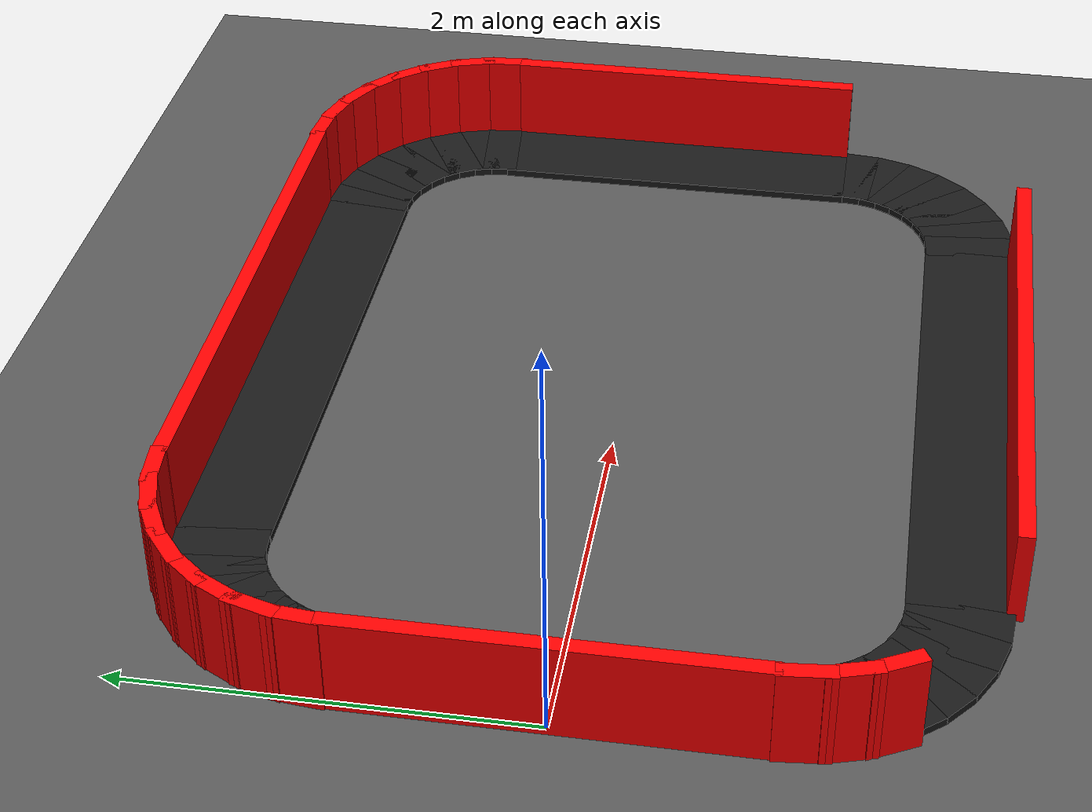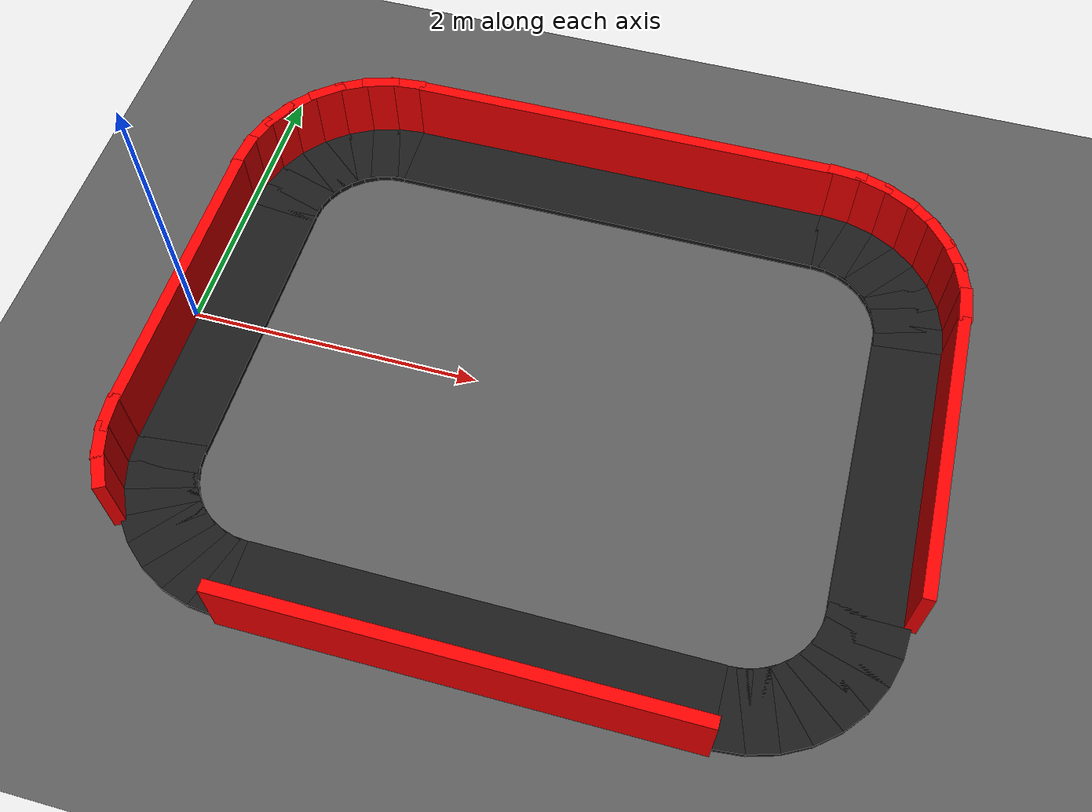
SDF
<sdf version="1.8">
 <world name="city_track_world">
  <model name="ground_plane">
   <static>true</static>
   <link name="link">
    <collision name="collision">
     <geometry><plane><normal>0 0 1</normal><size>100 100</size></plane></geometry>
    </collision>
    <visual name="visual">
     <geometry><plane><normal>0 0 1</normal><size>100 100</size></plane></geometry>
     <material><ambient>0.35 0.35 0.35 1</ambient><diffuse>0.35 0.35 0.35 1</diffuse></material>
    </visual>
   </link>
  </model>
  <model name="road_top">
   <static>true</static>
   <link name="link">
    <pose>2.5000 1.7500 0.0200 0 0 0.0000</pose>
    <visual name="visual">
     <geometry><box><size>3.0000 0.5000 0.0400</size></box></geometry>
     <material><ambient>0.10 0.10 0.10 1</ambient><diffuse>0.10 0.10 0.10 1</diffuse></material>
    </visual>
   </link>
  </model>
  <model name="road_bottom">
   <static>true</static>
   <link name="link">
    <pose>2.5000 -1.7500 0.0200 0 0 0.0000</pose>
    <visual name="visual">
     <geometry><box><size>3.0000 0.5000 0.0400</size></box></geometry>
     <material><ambient>0.10 0.10 0.10 1</ambient><diffuse>0.10 0.10 0.10 1</diffuse></material>
    </visual>
   </link>
  </model>
  <model name="road_left">
   <static>true</static>
   <link name="link">
    <pose>0.2500 0.0000 0.0200 0 0 1.5708</pose>
    <visual name="visual">
     <geometry><box><size>2.0000 0.5000 0.0400</size></box></geometry>
     <material><ambient>0.10 0.10 0.10 1</ambient><diffuse>0.10 0.10 0.10 1</diffuse></material>
    </visual>
   </link>
  </model>
  <model name="road_right">
   <static>true</static>
   <link name="link">
    <pose>4.7500 0.0000 0.0200 0 0 1.5708</pose>
    <visual name="visual">
     <geometry><box><size>2.0000 0.5000 0.0400</size></box></geometry>
     <material><ambient>0.10 0.10 0.10 1</ambient><diffuse>0.10 0.10 0.10 1</diffuse></material>
    </visual>
   </link>
  </model>
  <model name="road_top_right_curve_1">
   <static>true</static>
   <link name="link">
    <pose>4.7464 1.0735 0.0200 0 0 1.6690</pose>
    <visual name="visual">
     <geometry><box><size>0.1988 0.5000 0.0400</size></box></geometry>
     <material><ambient>0.10 0.10 0.10 1</ambient><diffuse>0.10 0.10 0.10 1</diffuse></material>
    </visual>
   </link>
  </model>
  <model name="road_top_right_curve_2">
   <static>true</static>
   <link name="link">
    <pose>4.7177 1.2177 0.0200 0 0 1.8653</pose>
    <visual name="visual">
     <geometry><box><size>0.1988 0.5000 0.0400</size></box></geometry>
     <material><ambient>0.10 0.10 0.10 1</ambient><diffuse>0.10 0.10 0.10 1</diffuse></material>
    </visual>
   </link>
  </model>
  <model name="road_top_right_curve_3">
   <static>true</static>
   <link name="link">
    <pose>4.6614 1.3535 0.0200 0 0 2.0617</pose>
    <visual name="visual">
     <geometry><box><size>0.1988 0.5000 0.0400</size></box></geometry>
     <material><ambient>0.10 0.10 0.10 1</ambient><diffuse>0.10 0.10 0.10 1</diffuse></material>
    </visual>
   </link>
  </model>
  <model name="road_top_right_curve_4">
   <static>true</static>
   <link name="link">
    <pose>4.5798 1.4758 0.0200 0 0 2.2580</pose>
    <visual name="visual">
     <geometry><box><size>0.1988 0.5000 0.0400</size></box></geometry>
     <material><ambient>0.10 0.10 0.10 1</ambient><diffuse>0.10 0.10 0.10 1</diffuse></material>
    </visual>
   </link>
  </model>
  <model name="road_top_right_curve_5">
   <static>true</static>
   <link name="link">
    <pose>4.4758 1.5798 0.0200 0 0 2.4544</pose>
    <visual name="visual">
     <geometry><box><size>0.1988 0.5000 0.0400</size></box></geometry>
     <material><ambient>0.10 0.10 0.10 1</ambient><diffuse>0.10 0.10 0.10 1</diffuse></material>
    </visual>
   </link>
  </model>
  <model name="road_top_right_curve_6">
   <static>true</static>
   <link name="link">
    <pose>4.3535 1.6614 0.0200 0 0 2.6507</pose>
    <visual name="visual">
     <geometry><box><size>0.1988 0.5000 0.0400</size></box></geometry>
     <material><ambient>0.10 0.10 0.10 1</ambient><diffuse>0.10 0.10 0.10 1</diffuse></material>
    </visual>
   </link>
  </model>
  <model name="road_top_right_curve_7">
   <static>true</static>
   <link name="link">
    <pose>4.2177 1.7177 0.0200 0 0 2.8471</pose>
    <visual name="visual">
     <geometry><box><size>0.1988 0.5000 0.0400</size></box></geometry>
     <material><ambient>0.10 0.10 0.10 1</ambient><diffuse>0.10 0.10 0.10 1</diffuse></material>
    </visual>
   </link>
  </model>
  <model name="road_top_right_curve_8">
   <static>true</static>
   <link name="link">
    <pose>4.0735 1.7464 0.0200 0 0 3.0434</pose>
    <visual name="visual">
     <geometry><box><size>0.1988 0.5000 0.0400</size></box></geometry>
     <material><ambient>0.10 0.10 0.10 1</ambient><diffuse>0.10 0.10 0.10 1</diffuse></material>
    </visual>
   </link>
  </model>
  <model name="road_top_left_curve_1">
   <static>true</static>
   <link name="link">
    <pose>0.9265 1.7464 0.0200 0 0 3.2398</pose>
    <visual name="visual">
     <geometry><box><size>0.1988 0.5000 0.0400</size></box></geometry>
     <material><ambient>0.10 0.10 0.10 1</ambient><diffuse>0.10 0.10 0.10 1</diffuse></material>
    </visual>
   </link>
  </model>
  <model name="road_top_left_curve_2">
   <static>true</static>
   <link name="link">
    <pose>0.7823 1.7177 0.0200 0 0 3.4361</pose>
    <visual name="visual">
     <geometry><box><size>0.1988 0.5000 0.0400</size></box></geometry>
     <material><ambient>0.10 0.10 0.10 1</ambient><diffuse>0.10 0.10 0.10 1</diffuse></material>
    </visual>
   </link>
  </model>
  <model name="road_top_left_curve_3">
   <static>true</static>
   <link name="link">
    <pose>0.6465 1.6614 0.0200 0 0 3.6325</pose>
    <visual name="visual">
     <geometry><box><size>0.1988 0.5000 0.0400</size></box></geometry>
     <material><ambient>0.10 0.10 0.10 1</ambient><diffuse>0.10 0.10 0.10 1</diffuse></material>
    </visual>
   </link>
  </model>
  <model name="road_top_left_curve_4">
   <static>true</static>
   <link name="link">
    <pose>0.5242 1.5798 0.0200 0 0 3.8288</pose>
    <visual name="visual">
     <geometry><box><size>0.1988 0.5000 0.0400</size></box></geometry>
     <material><ambient>0.10 0.10 0.10 1</ambient><diffuse>0.10 0.10 0.10 1</diffuse></material>
    </visual>
   </link>
  </model>
  <model name="road_top_left_curve_5">
   <static>true</static>
   <link name="link">
    <pose>0.4202 1.4758 0.0200 0 0 4.0252</pose>
    <visual name="visual">
     <geometry><box><size>0.1988 0.5000 0.0400</size></box></geometry>
     <material><ambient>0.10 0.10 0.10 1</ambient><diffuse>0.10 0.10 0.10 1</diffuse></material>
    </visual>
   </link>
  </model>
  <model name="road_top_left_curve_6">
   <static>true</static>
   <link name="link">
    <pose>0.3386 1.3535 0.0200 0 0 4.2215</pose>
    <visual name="visual">
     <geometry><box><size>0.1988 0.5000 0.0400</size></box></geometry>
     <material><ambient>0.10 0.10 0.10 1</ambient><diffuse>0.10 0.10 0.10 1</diffuse></material>
    </visual>
   </link>
  </model>
  <model name="road_top_left_curve_7">
   <static>true</static>
   <link name="link">
    <pose>0.2823 1.2177 0.0200 0 0 4.4179</pose>
    <visual name="visual">
     <geometry><box><size>0.1988 0.5000 0.0400</size></box></geometry>
     <material><ambient>0.10 0.10 0.10 1</ambient><diffuse>0.10 0.10 0.10 1</diffuse></material>
    </visual>
   </link>
  </model>
  <model name="road_top_left_curve_8">
   <static>true</static>
   <link name="link">
    <pose>0.2536 1.0735 0.0200 0 0 4.6142</pose>
    <visual name="visual">
     <geometry><box><size>0.1988 0.5000 0.0400</size></box></geometry>
     <material><ambient>0.10 0.10 0.10 1</ambient><diffuse>0.10 0.10 0.10 1</diffuse></material>
    </visual>
   </link>
  </model>
  <model name="road_bottom_left_curve_1">
   <static>true</static>
   <link name="link">
    <pose>0.2536 -1.0735 0.0200 0 0 4.8106</pose>
    <visual name="visual">
     <geometry><box><size>0.1988 0.5000 0.0400</size></box></geometry>
     <material><ambient>0.10 0.10 0.10 1</ambient><diffuse>0.10 0.10 0.10 1</diffuse></material>
    </visual>
   </link>
  </model>
  <model name="road_bottom_left_curve_2">
   <static>true</static>
   <link name="link">
    <pose>0.2823 -1.2177 0.0200 0 0 5.0069</pose>
    <visual name="visual">
     <geometry><box><size>0.1988 0.5000 0.0400</size></box></geometry>
     <material><ambient>0.10 0.10 0.10 1</ambient><diffuse>0.10 0.10 0.10 1</diffuse></material>
    </visual>
   </link>
  </model>
  <model name="road_bottom_left_curve_3">
   <static>true</static>
   <link name="link">
    <pose>0.3386 -1.3535 0.0200 0 0 5.2033</pose>
    <visual name="visual">
     <geometry><box><size>0.1988 0.5000 0.0400</size></box></geometry>
     <material><ambient>0.10 0.10 0.10 1</ambient><diffuse>0.10 0.10 0.10 1</diffuse></material>
    </visual>
   </link>
  </model>
  <model name="road_bottom_left_curve_4">
   <static>true</static>
   <link name="link">
    <pose>0.4202 -1.4758 0.0200 0 0 5.3996</pose>
    <visual name="visual">
     <geometry><box><size>0.1988 0.5000 0.0400</size></box></geometry>
     <material><ambient>0.10 0.10 0.10 1</ambient><diffuse>0.10 0.10 0.10 1</diffuse></material>
    </visual>
   </link>
  </model>
  <model name="road_bottom_left_curve_5">
   <static>true</static>
   <link name="link">
    <pose>0.5242 -1.5798 0.0200 0 0 5.5960</pose>
    <visual name="visual">
     <geometry><box><size>0.1988 0.5000 0.0400</size></box></geometry>
     <material><ambient>0.10 0.10 0.10 1</ambient><diffuse>0.10 0.10 0.10 1</diffuse></material>
    </visual>
   </link>
  </model>
  <model name="road_bottom_left_curve_6">
   <static>true</static>
   <link name="link">
    <pose>0.6465 -1.6614 0.0200 0 0 5.7923</pose>
    <visual name="visual">
     <geometry><box><size>0.1988 0.5000 0.0400</size></box></geometry>
     <material><ambient>0.10 0.10 0.10 1</ambient><diffuse>0.10 0.10 0.10 1</diffuse></material>
    </visual>
   </link>
  </model>
  <model name="road_bottom_left_curve_7">
   <static>true</static>
   <link name="link">
    <pose>0.7823 -1.7177 0.0200 0 0 5.9887</pose>
    <visual name="visual">
     <geometry><box><size>0.1988 0.5000 0.0400</size></box></geometry>
     <material><ambient>0.10 0.10 0.10 1</ambient><diffuse>0.10 0.10 0.10 1</diffuse></material>
    </visual>
   </link>
  </model>
  <model name="road_bottom_left_curve_8">
   <static>true</static>
   <link name="link">
    <pose>0.9265 -1.7464 0.0200 0 0 6.1850</pose>
    <visual name="visual">
     <geometry><box><size>0.1988 0.5000 0.0400</size></box></geometry>
     <material><ambient>0.10 0.10 0.10 1</ambient><diffuse>0.10 0.10 0.10 1</diffuse></material>
    </visual>
   </link>
  </model>
  <model name="road_bottom_right_curve_1">
   <static>true</static>
   <link name="link">
    <pose>4.0735 -1.7464 0.0200 0 0 6.3814</pose>
    <visual name="visual">
     <geometry><box><size>0.1988 0.5000 0.0400</size></box></geometry>
     <material><ambient>0.10 0.10 0.10 1</ambient><diffuse>0.10 0.10 0.10 1</diffuse></material>
    </visual>
   </link>
  </model>
  <model name="road_bottom_right_curve_2">
   <static>true</static>
   <link name="link">
    <pose>4.2177 -1.7177 0.0200 0 0 6.5777</pose>
    <visual name="visual">
     <geometry><box><size>0.1988 0.5000 0.0400</size></box></geometry>
     <material><ambient>0.10 0.10 0.10 1</ambient><diffuse>0.10 0.10 0.10 1</diffuse></material>
    </visual>
   </link>
  </model>
  <model name="road_bottom_right_curve_3">
   <static>true</static>
   <link name="link">
    <pose>4.3535 -1.6614 0.0200 0 0 6.7741</pose>
    <visual name="visual">
     <geometry><box><size>0.1988 0.5000 0.0400</size></box></geometry>
     <material><ambient>0.10 0.10 0.10 1</ambient><diffuse>0.10 0.10 0.10 1</diffuse></material>
    </visual>
   </link>
  </model>
  <model name="road_bottom_right_curve_4">
   <static>true</static>
   <link name="link">
    <pose>4.4758 -1.5798 0.0200 0 0 6.9704</pose>
    <visual name="visual">
     <geometry><box><size>0.1988 0.5000 0.0400</size></box></geometry>
     <material><ambient>0.10 0.10 0.10 1</ambient><diffuse>0.10 0.10 0.10 1</diffuse></material>
    </visual>
   </link>
  </model>
  <model name="road_bottom_right_curve_5">
   <static>true</static>
   <link name="link">
    <pose>4.5798 -1.4758 0.0200 0 0 7.1668</pose>
    <visual name="visual">
     <geometry><box><size>0.1988 0.5000 0.0400</size></box></geometry>
     <material><ambient>0.10 0.10 0.10 1</ambient><diffuse>0.10 0.10 0.10 1</diffuse></material>
    </visual>
   </link>
  </model>
  <model name="road_bottom_right_curve_6">
   <static>true</static>
   <link name="link">
    <pose>4.6614 -1.3535 0.0200 0 0 7.3631</pose>
    <visual name="visual">
     <geometry><box><size>0.1988 0.5000 0.0400</size></box></geometry>
     <material><ambient>0.10 0.10 0.10 1</ambient><diffuse>0.10 0.10 0.10 1</diffuse></material>
    </visual>
   </link>
  </model>
  <model name="road_bottom_right_curve_7">
   <static>true</static>
   <link name="link">
    <pose>4.7177 -1.2177 0.0200 0 0 7.5595</pose>
    <visual name="visual">
     <geometry><box><size>0.1988 0.5000 0.0400</size></box></geometry>
     <material><ambient>0.10 0.10 0.10 1</ambient><diffuse>0.10 0.10 0.10 1</diffuse></material>
    </visual>
   </link>
  </model>
  <model name="road_bottom_right_curve_8">
   <static>true</static>
   <link name="link">
    <pose>4.7464 -1.0735 0.0200 0 0 7.7558</pose>
    <visual name="visual">
     <geometry><box><size>0.1988 0.5000 0.0400</size></box></geometry>
     <material><ambient>0.10 0.10 0.10 1</ambient><diffuse>0.10 0.10 0.10 1</diffuse></material>
    </visual>
   </link>
  </model>
  <model name="outer_top_wall">
   <static>true</static>
   <link name="link">
    <pose>2.5000 2.0000 0.2500 0 0 0.0000</pose>
    <collision name="collision"><geometry><box><size>3.0000 0.0800 0.5000</size></box></geometry></collision>
    <visual name="visual">
     <geometry><box><size>3.0000 0.0800 0.5000</size></box></geometry>
     <material><ambient>1 0 0 1</ambient><diffuse>1 0 0 1</diffuse></material>
    </visual>
   </link>
  </model>
  <model name="outer_bottom_wall">
   <static>true</static>
   <link name="link">
    <pose>2.5000 -2.0000 0.2500 0 0 0.0000</pose>
    <collision name="collision"><geometry><box><size>3.0000 0.0800 0.5000</size></box></geometry></collision>
    <visual name="visual">
     <geometry><box><size>3.0000 0.0800 0.5000</size></box></geometry>
     <material><ambient>1 0 0 1</ambient><diffuse>1 0 0 1</diffuse></material>
    </visual>
   </link>
  </model>
  <model name="outer_left_wall">
   <static>true</static>
   <link name="link">
    <pose>0.0000 0.0000 0.2500 0 0 1.5708</pose>
    <collision name="collision"><geometry><box><size>2.0000 0.0800 0.5000</size></box></geometry></collision>
    <visual name="visual">
     <geometry><box><size>2.0000 0.0800 0.5000</size></box></geometry>
     <material><ambient>1 0 0 1</ambient><diffuse>1 0 0 1</diffuse></material>
    </visual>
   </link>
  </model>
  <model name="outer_right_wall">
   <static>true</static>
   <link name="link">
    <pose>5.0000 0.0000 0.2500 0 0 1.5708</pose>
    <collision name="collision"><geometry><box><size>2.0000 0.0800 0.5000</size></box></geometry></collision>
    <visual name="visual">
     <geometry><box><size>2.0000 0.0800 0.5000</size></box></geometry>
     <material><ambient>1 0 0 1</ambient><diffuse>1 0 0 1</diffuse></material>
    </visual>
   </link>
  </model>
  <model name="outer_top_right_wall_curve_1">
   <static>true</static>
   <link name="link">
    <pose>4.9952 1.0980 0.2500 0 0 1.6690</pose>
    <collision name="collision"><geometry><box><size>0.2651 0.0800 0.5000</size></box></geometry></collision>
    <visual name="visual">
     <geometry><box><size>0.2651 0.0800 0.5000</size></box></geometry>
     <material><ambient>1 0 0 1</ambient><diffuse>1 0 0 1</diffuse></material>
    </visual>
   </link>
  </model>
  <model name="outer_top_right_wall_curve_2">
   <static>true</static>
   <link name="link">
    <pose>4.9569 1.2903 0.2500 0 0 1.8653</pose>
    <collision name="collision"><geometry><box><size>0.2651 0.0800 0.5000</size></box></geometry></collision>
    <visual name="visual">
     <geometry><box><size>0.2651 0.0800 0.5000</size></box></geometry>
     <material><ambient>1 0 0 1</ambient><diffuse>1 0 0 1</diffuse></material>
    </visual>
   </link>
  </model>
  <model name="outer_top_right_wall_curve_3">
   <static>true</static>
   <link name="link">
    <pose>4.8819 1.4714 0.2500 0 0 2.0617</pose>
    <collision name="collision"><geometry><box><size>0.2651 0.0800 0.5000</size></box></geometry></collision>
    <visual name="visual">
     <geometry><box><size>0.2651 0.0800 0.5000</size></box></geometry>
     <material><ambient>1 0 0 1</ambient><diffuse>1 0 0 1</diffuse></material>
    </visual>
   </link>
  </model>
  <model name="outer_top_right_wall_curve_4">
   <static>true</static>
   <link name="link">
    <pose>4.7730 1.6344 0.2500 0 0 2.2580</pose>
    <collision name="collision"><geometry><box><size>0.2651 0.0800 0.5000</size></box></geometry></collision>
    <visual name="visual">
     <geometry><box><size>0.2651 0.0800 0.5000</size></box></geometry>
     <material><ambient>1 0 0 1</ambient><diffuse>1 0 0 1</diffuse></material>
    </visual>
   </link>
  </model>
  <model name="outer_top_right_wall_curve_5">
   <static>true</static>
   <link name="link">
    <pose>4.6344 1.7730 0.2500 0 0 2.4544</pose>
    <collision name="collision"><geometry><box><size>0.2651 0.0800 0.5000</size></box></geometry></collision>
    <visual name="visual">
     <geometry><box><size>0.2651 0.0800 0.5000</size></box></geometry>
     <material><ambient>1 0 0 1</ambient><diffuse>1 0 0 1</diffuse></material>
    </visual>
   </link>
  </model>
  <model name="outer_top_right_wall_curve_6">
   <static>true</static>
   <link name="link">
    <pose>4.4714 1.8819 0.2500 0 0 2.6507</pose>
    <collision name="collision"><geometry><box><size>0.2651 0.0800 0.5000</size></box></geometry></collision>
    <visual name="visual">
     <geometry><box><size>0.2651 0.0800 0.5000</size></box></geometry>
     <material><ambient>1 0 0 1</ambient><diffuse>1 0 0 1</diffuse></material>
    </visual>
   </link>
  </model>
  <model name="outer_top_right_wall_curve_7">
   <static>true</static>
   <link name="link">
    <pose>4.2903 1.9569 0.2500 0 0 2.8471</pose>
    <collision name="collision"><geometry><box><size>0.2651 0.0800 0.5000</size></box></geometry></collision>
    <visual name="visual">
     <geometry><box><size>0.2651 0.0800 0.5000</size></box></geometry>
     <material><ambient>1 0 0 1</ambient><diffuse>1 0 0 1</diffuse></material>
    </visual>
   </link>
  </model>
  <model name="outer_top_right_wall_curve_8">
   <static>true</static>
   <link name="link">
    <pose>4.0980 1.9952 0.2500 0 0 3.0434</pose>
    <collision name="collision"><geometry><box><size>0.2651 0.0800 0.5000</size></box></geometry></collision>
    <visual name="visual">
     <geometry><box><size>0.2651 0.0800 0.5000</size></box></geometry>
     <material><ambient>1 0 0 1</ambient><diffuse>1 0 0 1</diffuse></material>
    </visual>
   </link>
  </model>
  <model name="outer_top_left_wall_curve_1">
   <static>true</static>
   <link name="link">
    <pose>0.9020 1.9952 0.2500 0 0 3.2398</pose>
    <collision name="collision"><geometry><box><size>0.2651 0.0800 0.5000</size></box></geometry></collision>
    <visual name="visual">
     <geometry><box><size>0.2651 0.0800 0.5000</size></box></geometry>
     <material><ambient>1 0 0 1</ambient><diffuse>1 0 0 1</diffuse></material>
    </visual>
   </link>
  </model>
  <model name="outer_top_left_wall_curve_2">
   <static>true</static>
   <link name="link">
    <pose>0.7097 1.9569 0.2500 0 0 3.4361</pose>
    <collision name="collision"><geometry><box><size>0.2651 0.0800 0.5000</size></box></geometry></collision>
    <visual name="visual">
     <geometry><box><size>0.2651 0.0800 0.5000</size></box></geometry>
     <material><ambient>1 0 0 1</ambient><diffuse>1 0 0 1</diffuse></material>
    </visual>
   </link>
  </model>
  <model name="outer_top_left_wall_curve_3">
   <static>true</static>
   <link name="link">
    <pose>0.5286 1.8819 0.2500 0 0 3.6325</pose>
    <collision name="collision"><geometry><box><size>0.2651 0.0800 0.5000</size></box></geometry></collision>
    <visual name="visual">
     <geometry><box><size>0.2651 0.0800 0.5000</size></box></geometry>
     <material><ambient>1 0 0 1</ambient><diffuse>1 0 0 1</diffuse></material>
    </visual>
   </link>
  </model>
  <model name="outer_top_left_wall_curve_4">
   <static>true</static>
   <link name="link">
    <pose>0.3656 1.7730 0.2500 0 0 3.8288</pose>
    <collision name="collision"><geometry><box><size>0.2651 0.0800 0.5000</size></box></geometry></collision>
    <visual name="visual">
     <geometry><box><size>0.2651 0.0800 0.5000</size></box></geometry>
     <material><ambient>1 0 0 1</ambient><diffuse>1 0 0 1</diffuse></material>
    </visual>
   </link>
  </model>
  <model name="outer_top_left_wall_curve_5">
   <static>true</static>
   <link name="link">
    <pose>0.2270 1.6344 0.2500 0 0 4.0252</pose>
    <collision name="collision"><geometry><box><size>0.2651 0.0800 0.5000</size></box></geometry></collision>
    <visual name="visual">
     <geometry><box><size>0.2651 0.0800 0.5000</size></box></geometry>
     <material><ambient>1 0 0 1</ambient><diffuse>1 0 0 1</diffuse></material>
    </visual>
   </link>
  </model>
  <model name="outer_top_left_wall_curve_6">
   <static>true</static>
   <link name="link">
    <pose>0.1181 1.4714 0.2500 0 0 4.2215</pose>
    <collision name="collision"><geometry><box><size>0.2651 0.0800 0.5000</size></box></geometry></collision>
    <visual name="visual">
     <geometry><box><size>0.2651 0.0800 0.5000</size></box></geometry>
     <material><ambient>1 0 0 1</ambient><diffuse>1 0 0 1</diffuse></material>
    </visual>
   </link>
  </model>
  <model name="outer_top_left_wall_curve_7">
   <static>true</static>
   <link name="link">
    <pose>0.0431 1.2903 0.2500 0 0 4.4179</pose>
    <collision name="collision"><geometry><box><size>0.2651 0.0800 0.5000</size></box></geometry></collision>
    <visual name="visual">
     <geometry><box><size>0.2651 0.0800 0.5000</size></box></geometry>
     <material><ambient>1 0 0 1</ambient><diffuse>1 0 0 1</diffuse></material>
    </visual>
   </link>
  </model>
  <model name="outer_top_left_wall_curve_8">
   <static>true</static>
   <link name="link">
    <pose>0.0048 1.0980 0.2500 0 0 4.6142</pose>
    <collision name="collision"><geometry><box><size>0.2651 0.0800 0.5000</size></box></geometry></collision>
    <visual name="visual">
     <geometry><box><size>0.2651 0.0800 0.5000</size></box></geometry>
     <material><ambient>1 0 0 1</ambient><diffuse>1 0 0 1</diffuse></material>
    </visual>
   </link>
  </model>
  <model name="outer_bottom_left_wall_curve_1">
   <static>true</static>
   <link name="link">
    <pose>0.0048 -1.0980 0.2500 0 0 4.8106</pose>
    <collision name="collision"><geometry><box><size>0.2651 0.0800 0.5000</size></box></geometry></collision>
    <visual name="visual">
     <geometry><box><size>0.2651 0.0800 0.5000</size></box></geometry>
     <material><ambient>1 0 0 1</ambient><diffuse>1 0 0 1</diffuse></material>
    </visual>
   </link>
  </model>
  <model name="outer_bottom_left_wall_curve_2">
   <static>true</static>
   <link name="link">
    <pose>0.0431 -1.2903 0.2500 0 0 5.0069</pose>
    <collision name="collision"><geometry><box><size>0.2651 0.0800 0.5000</size></box></geometry></collision>
    <visual name="visual">
     <geometry><box><size>0.2651 0.0800 0.5000</size></box></geometry>
     <material><ambient>1 0 0 1</ambient><diffuse>1 0 0 1</diffuse></material>
    </visual>
   </link>
  </model>
  <model name="outer_bottom_left_wall_curve_3">
   <static>true</static>
   <link name="link">
    <pose>0.1181 -1.4714 0.2500 0 0 5.2033</pose>
    <collision name="collision"><geometry><box><size>0.2651 0.0800 0.5000</size></box></geometry></collision>
    <visual name="visual">
     <geometry><box><size>0.2651 0.0800 0.5000</size></box></geometry>
     <material><ambient>1 0 0 1</ambient><diffuse>1 0 0 1</diffuse></material>
    </visual>
   </link>
  </model>
 </world>
</sdf>
